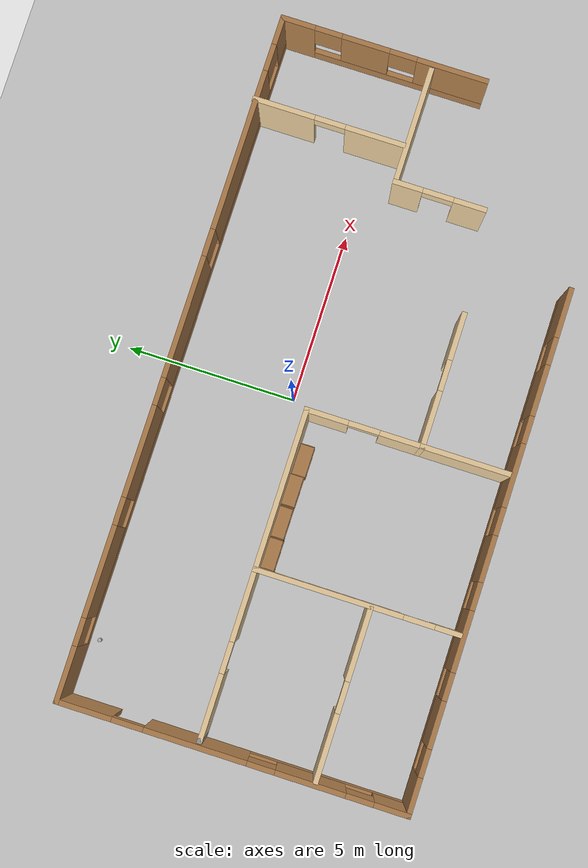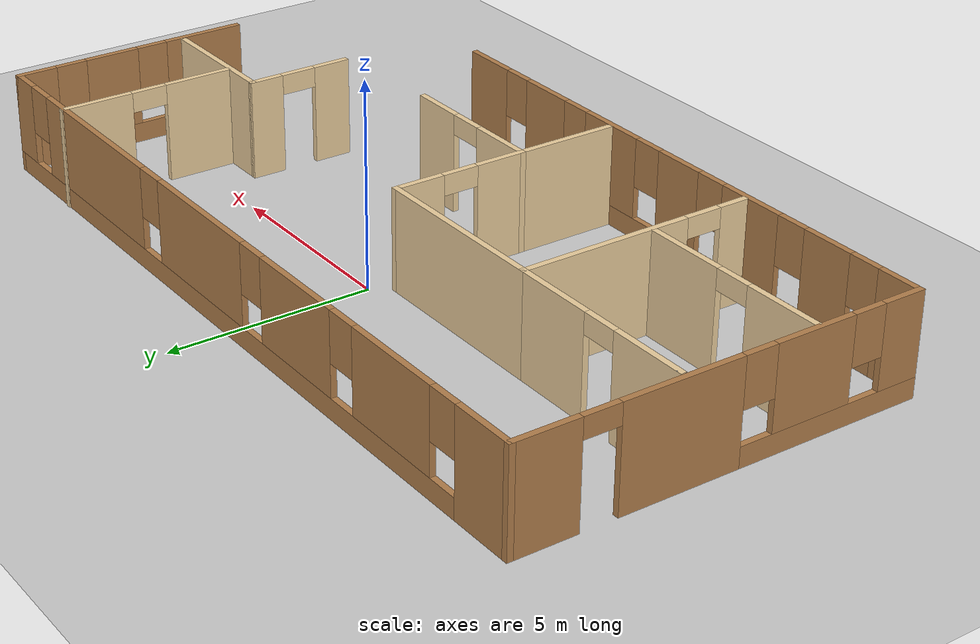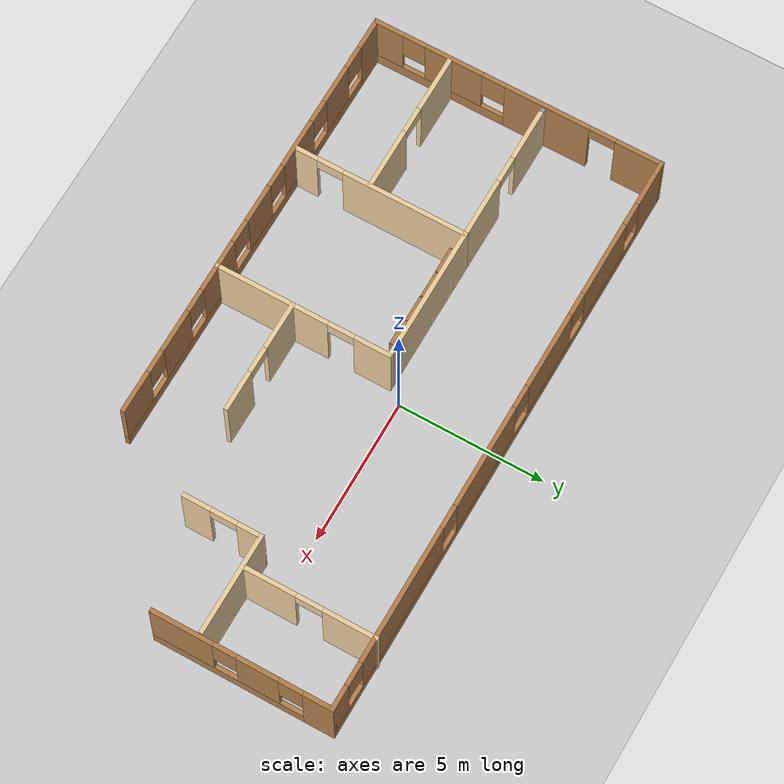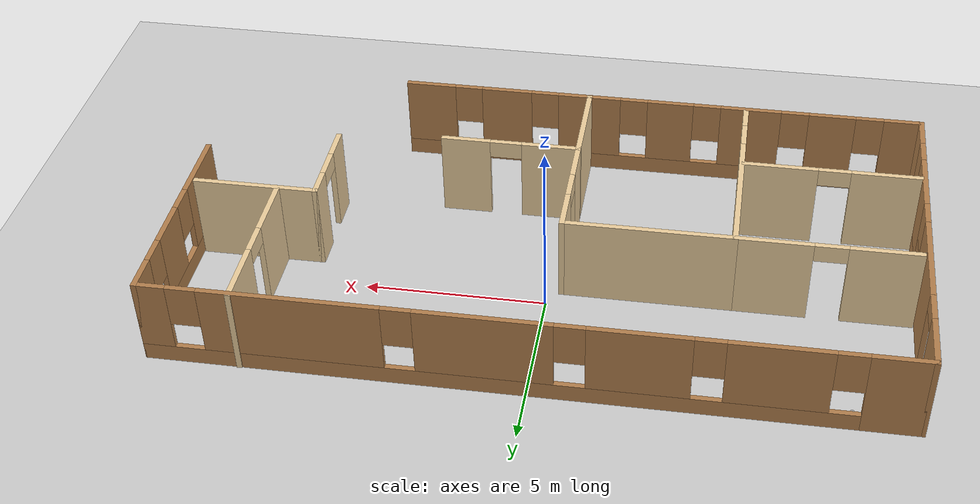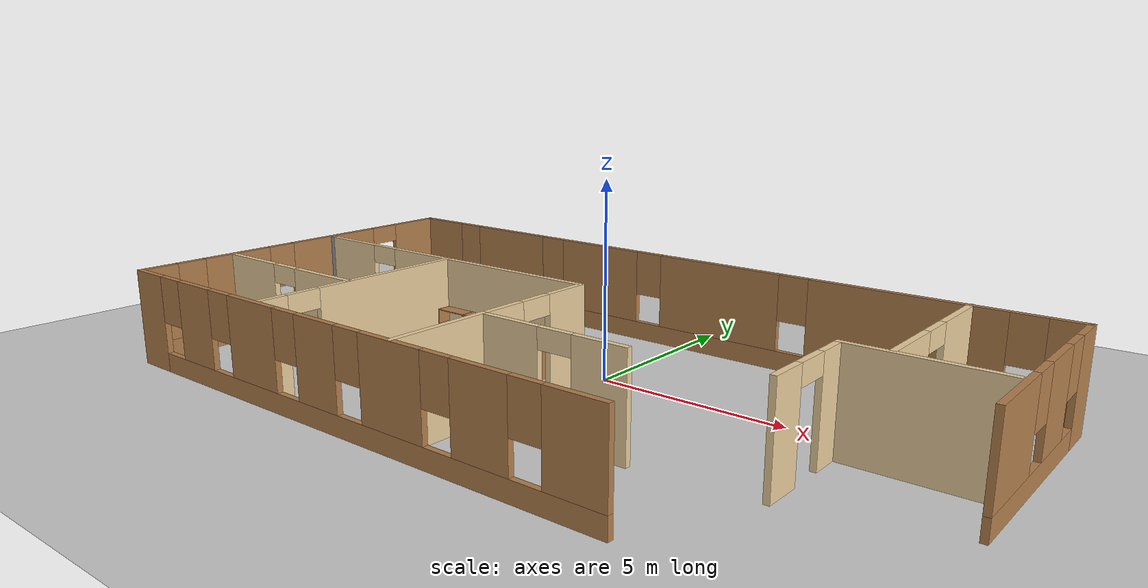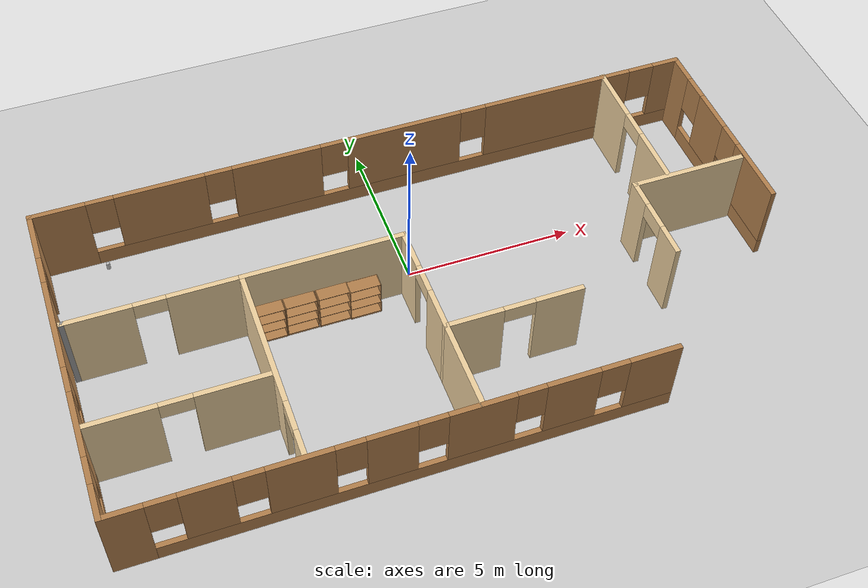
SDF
<sdf version="1.7">
 <world name="default">
  <model name="ground_plane">
   <static>1</static>
   <link name="link">
    <collision name="collision">
     <geometry><plane><normal>0 0 1</normal><size>100 100</size></plane></geometry>
     <surface>
      <contact><collide_bitmask>65535</collide_bitmask></contact>
      <friction><ode><mu>100</mu><mu2>50</mu2></ode></friction>
     </surface>
    </collision>
    <visual name="visual">
     <cast_shadows>0</cast_shadows>
     <geometry><plane><normal>0 0 1</normal><size>100 100</size></plane></geometry>
     <material>
      <script><uri>file://media/materials/scripts/gazebo.material</uri><name>Gazebo/Grey</name></script>
     </material>
    </visual>
   </link>
  </model>
  <model name="Disasterbuilding">
   <pose>0 -1.48613 0 0 -0 0</pose>
   <link name="Wall_19">
    <pose>0 4.98613 0 0 -0 0</pose>
    <visual name="Wall_19_Visual_0">
     <pose>-9.25565 0 1.25 0 -0 0</pose>
     <geometry><box><size>1.63871 0.15 2.5</size></box></geometry>
     <material>
      <script><uri>file://media/materials/scripts/gazebo.material</uri><name>Gazebo/Wood</name></script>
      <ambient>1 1 1 1</ambient>
     </material>
     <meta><layer>0</layer></meta>
    </visual>
    <collision name="Wall_19_Collision_0">
     <geometry><box><size>1.63871 0.15 2.5</size></box></geometry>
     <pose>-9.25565 0 1.25 0 -0 0</pose>
    </collision>
    <visual name="Wall_19_Visual_1">
     <pose>0.819354 0 0.25 0 -0 0</pose>
     <geometry><box><size>18.5113 0.15 0.5</size></box></geometry>
     <material>
      <script><uri>file://media/materials/scripts/gazebo.material</uri><name>Gazebo/Wood</name></script>
      <ambient>1 1 1 1</ambient>
     </material>
     <meta><layer>0</layer></meta>
    </visual>
    <collision name="Wall_19_Collision_1">
     <geometry><box><size>18.5113 0.15 0.5</size></box></geometry>
     <pose>0.819354 0 0.25 0 -0 0</pose>
    </collision>
    <visual name="Wall_19_Visual_2">
     <pose>-6.31404 0 1.5 0 -0 0</pose>
     <geometry><box><size>2.6445 0.15 2</size></box></geometry>
     <material>
      <script><uri>file://media/materials/scripts/gazebo.material</uri><name>Gazebo/Wood</name></script>
      <ambient>1 1 1 1</ambient>
     </material>
     <meta><layer>0</layer></meta>
    </visual>
    <collision name="Wall_19_Collision_2">
     <geometry><box><size>2.6445 0.15 2</size></box></geometry>
     <pose>-6.31404 0 1.5 0 -0 0</pose>
    </collision>
    <visual name="Wall_19_Visual_3">
     <pose>-2.85923 0 1.5 0 -0 0</pose>
     <geometry><box><size>2.66513 0.15 2</size></box></geometry>
     <material>
      <script><uri>file://media/materials/scripts/gazebo.material</uri><name>Gazebo/Wood</name></script>
      <ambient>1 1 1 1</ambient>
     </material>
     <meta><layer>0</layer></meta>
    </visual>
    <collision name="Wall_19_Collision_3">
     <geometry><box><size>2.66513 0.15 2</size></box></geometry>
     <pose>-2.85923 0 1.5 0 -0 0</pose>
    </collision>
    <visual name="Wall_19_Visual_4">
     <pose>1.05967 0 1.5 0 -0 0</pose>
     <geometry><box><size>3.57266 0.15 2</size></box></geometry>
     <material>
      <script><uri>file://media/materials/scripts/gazebo.material</uri><name>Gazebo/Wood</name></script>
      <ambient>1 1 1 1</ambient>
     </material>
     <meta><layer>0</layer></meta>
    </visual>
    <collision name="Wall_19_Collision_4">
     <geometry><box><size>3.57266 0.15 2</size></box></geometry>
     <pose>1.05967 0 1.5 0 -0 0</pose>
    </collision>
    <visual name="Wall_19_Visual_5">
     <pose>6.02016 0 1.5 0 -0 0</pose>
     <geometry><box><size>4.74833 0.15 2</size></box></geometry>
     <material>
      <script><uri>file://media/materials/scripts/gazebo.material</uri><name>Gazebo/Wood</name></script>
      <ambient>1 1 1 1</ambient>
     </material>
     <meta><layer>0</layer></meta>
    </visual>
    <collision name="Wall_19_Collision_5">
     <geometry><box><size>4.74833 0.15 2</size></box></geometry>
     <pose>6.02016 0 1.5 0 -0 0</pose>
    </collision>
    <visual name="Wall_19_Visual_6">
     <pose>9.63466 0 1.5 0 -0 0</pose>
     <geometry><box><size>0.880675 0.15 2</size></box></geometry>
     <material>
      <script><uri>file://media/materials/scripts/gazebo.material</uri><name>Gazebo/Wood</name></script>
      <ambient>1 1 1 1</ambient>
     </material>
     <meta><layer>0</layer></meta>
    </visual>
    <collision name="Wall_19_Collision_6">
     <geometry><box><size>0.880675 0.15 2</size></box></geometry>
     <pose>9.63466 0 1.5 0 -0 0</pose>
    </collision>
    <visual name="Wall_19_Visual_7">
     <pose>-8.03629 0 1.9 0 -0 0</pose>
     <geometry><box><size>0.8 0.15 1.2</size></box></geometry>
     <material>
      <script><uri>file://media/materials/scripts/gazebo.material</uri><name>Gazebo/Wood</name></script>
      <ambient>1 1 1 1</ambient>
     </material>
     <meta><layer>0</layer></meta>
    </visual>
    <collision name="Wall_19_Collision_7">
     <geometry><box><size>0.8 0.15 1.2</size></box></geometry>
     <pose>-8.03629 0 1.9 0 -0 0</pose>
    </collision>
    <visual name="Wall_19_Visual_8">
     <pose>-4.59179 0 1.9 0 -0 0</pose>
     <geometry><box><size>0.8 0.15 1.2</size></box></geometry>
     <material>
      <script><uri>file://media/materials/scripts/gazebo.material</uri><name>Gazebo/Wood</name></script>
      <ambient>1 1 1 1</ambient>
     </material>
     <meta><layer>0</layer></meta>
    </visual>
    <collision name="Wall_19_Collision_8">
     <geometry><box><size>0.8 0.15 1.2</size></box></geometry>
     <pose>-4.59179 0 1.9 0 -0 0</pose>
    </collision>
    <visual name="Wall_19_Visual_9">
     <pose>-1.12666 0 1.9 0 -0 0</pose>
     <geometry><box><size>0.8 0.15 1.2</size></box></geometry>
     <material>
      <script><uri>file://media/materials/scripts/gazebo.material</uri><name>Gazebo/Wood</name></script>
      <ambient>1 1 1 1</ambient>
     </material>
     <meta><layer>0</layer></meta>
    </visual>
    <collision name="Wall_19_Collision_9">
     <geometry><box><size>0.8 0.15 1.2</size></box></geometry>
     <pose>-1.12666 0 1.9 0 -0 0</pose>
    </collision>
    <visual name="Wall_19_Visual_10">
     <pose>3.246 0 1.9 0 -0 0</pose>
     <geometry><box><size>0.8 0.15 1.2</size></box></geometry>
     <material>
      <script><uri>file://media/materials/scripts/gazebo.material</uri><name>Gazebo/Wood</name></script>
      <ambient>1 1 1 1</ambient>
     </material>
     <meta><layer>0</layer></meta>
    </visual>
    <collision name="Wall_19_Collision_10">
     <geometry><box><size>0.8 0.15 1.2</size></box></geometry>
     <pose>3.246 0 1.9 0 -0 0</pose>
    </collision>
    <visual name="Wall_19_Visual_11">
     <pose>8.79433 0 1.9 0 -0 0</pose>
     <geometry><box><size>0.8 0.15 1.2</size></box></geometry>
     <material>
      <script><uri>file://media/materials/scripts/gazebo.material</uri><name>Gazebo/Wood</name></script>
      <ambient>1 1 1 1</ambient>
     </material>
     <meta><layer>0</layer></meta>
    </visual>
    <collision name="Wall_19_Collision_11">
     <geometry><box><size>0.8 0.15 1.2</size></box></geometry>
     <pose>8.79433 0 1.9 0 -0 0</pose>
    </collision>
   </link>
   <link name="Wall_22">
    <pose>10 1.98613 0 0 -0 -1.5708</pose>
    <visual name="Wall_22_Visual_0">
     <pose>-2.55828 0 1.25 0 -0 0</pose>
     <geometry><box><size>1.03344 0.15 2.5</size></box></geometry>
     <material>
      <script><uri>file://media/materials/scripts/gazebo.material</uri><name>Gazebo/Wood</name></script>
      <ambient>1 1 1 1</ambient>
     </material>
     <meta><layer>0</layer></meta>
    </visual>
    <collision name="Wall_22_Collision_0">
     <geometry><box><size>1.03344 0.15 2.5</size></box></geometry>
     <pose>-2.55828 0 1.25 0 -0 0</pose>
    </collision>
    <visual name="Wall_22_Visual_1">
     <pose>0.51672 0 0.25 0 -0 0</pose>
     <geometry><box><size>5.11656 0.15 0.5</size></box></geometry>
     <material>
      <script><uri>file://media/materials/scripts/gazebo.material</uri><name>Gazebo/Wood</name></script>
      <ambient>1 1 1 1</ambient>
     </material>
     <meta><layer>0</layer></meta>
    </visual>
    <collision name="Wall_22_Collision_1">
     <geometry><box><size>5.11656 0.15 0.5</size></box></geometry>
     <pose>0.51672 0 0.25 0 -0 0</pose>
    </collision>
    <visual name="Wall_22_Visual_2">
     <pose>-0.538081 0 1.5 0 -0 0</pose>
     <geometry><box><size>1.40696 0.15 2</size></box></geometry>
     <material>
      <script><uri>file://media/materials/scripts/gazebo.material</uri><name>Gazebo/Wood</name></script>
      <ambient>1 1 1 1</ambient>
     </material>
     <meta><layer>0</layer></meta>
    </visual>
    <collision name="Wall_22_Collision_2">
     <geometry><box><size>1.40696 0.15 2</size></box></geometry>
     <pose>-0.538081 0 1.5 0 -0 0</pose>
    </collision>
    <visual name="Wall_22_Visual_3">
     <pose>2.0202 0 1.5 0 -0 0</pose>
     <geometry><box><size>2.1096 0.15 2</size></box></geometry>
     <material>
      <script><uri>file://media/materials/scripts/gazebo.material</uri><name>Gazebo/Wood</name></script>
      <ambient>1 1 1 1</ambient>
     </material>
     <meta><layer>0</layer></meta>
    </visual>
    <collision name="Wall_22_Collision_3">
     <geometry><box><size>2.1096 0.15 2</size></box></geometry>
     <pose>2.0202 0 1.5 0 -0 0</pose>
    </collision>
    <visual name="Wall_22_Visual_4">
     <pose>-1.64156 0 1.9 0 -0 0</pose>
     <geometry><box><size>0.8 0.15 1.2</size></box></geometry>
     <material>
      <script><uri>file://media/materials/scripts/gazebo.material</uri><name>Gazebo/Wood</name></script>
      <ambient>1 1 1 1</ambient>
     </material>
     <meta><layer>0</layer></meta>
    </visual>
    <collision name="Wall_22_Collision_4">
     <geometry><box><size>0.8 0.15 1.2</size></box></geometry>
     <pose>-1.64156 0 1.9 0 -0 0</pose>
    </collision>
    <visual name="Wall_22_Visual_5">
     <pose>0.565397 0 1.9 0 -0 0</pose>
     <geometry><box><size>0.8 0.15 1.2</size></box></geometry>
     <material>
      <script><uri>file://media/materials/scripts/gazebo.material</uri><name>Gazebo/Wood</name></script>
      <ambient>1 1 1 1</ambient>
     </material>
     <meta><layer>0</layer></meta>
    </visual>
    <collision name="Wall_22_Collision_5">
     <geometry><box><size>0.8 0.15 1.2</size></box></geometry>
     <pose>0.565397 0 1.9 0 -0 0</pose>
    </collision>
   </link>
   <link name="Wall_24">
    <pose>-10 -0.013868 0 0 -0 -1.5708</pose>
    <visual name="Wall_24_Visual_0">
     <pose>-4.25327 0 1.25 0 -0 0</pose>
     <geometry><box><size>1.64346 0.15 2.5</size></box></geometry>
     <material>
      <script><uri>file://media/materials/scripts/gazebo.material</uri><name>Gazebo/Wood</name></script>
      <ambient>1 1 1 1</ambient>
     </material>
     <meta><layer>0</layer></meta>
    </visual>
    <collision name="Wall_24_Collision_0">
     <geometry><box><size>1.64346 0.15 2.5</size></box></geometry>
     <pose>-4.25327 0 1.25 0 -0 0</pose>
    </collision>
    <visual name="Wall_24_Visual_1">
     <pose>-1.05896 0 1.25 0 -0 0</pose>
     <geometry><box><size>2.94514 0.15 2.5</size></box></geometry>
     <material>
      <script><uri>file://media/materials/scripts/gazebo.material</uri><name>Gazebo/Wood</name></script>
      <ambient>1 1 1 1</ambient>
     </material>
     <meta><layer>0</layer></meta>
    </visual>
    <collision name="Wall_24_Collision_1">
     <geometry><box><size>2.94514 0.15 2.5</size></box></geometry>
     <pose>-1.05896 0 1.25 0 -0 0</pose>
    </collision>
    <visual name="Wall_24_Visual_2">
     <pose>2.7443 0 0.25 0 -0 0</pose>
     <geometry><box><size>4.6614 0.15 0.5</size></box></geometry>
     <material>
      <script><uri>file://media/materials/scripts/gazebo.material</uri><name>Gazebo/Wood</name></script>
      <ambient>1 1 1 1</ambient>
     </material>
     <meta><layer>0</layer></meta>
    </visual>
    <collision name="Wall_24_Collision_2">
     <geometry><box><size>4.6614 0.15 0.5</size></box></geometry>
     <pose>2.7443 0 0.25 0 -0 0</pose>
    </collision>
    <visual name="Wall_24_Visual_3">
     <pose>2.21616 0 1.5 0 -0 0</pose>
     <geometry><box><size>2.0051 0.15 2</size></box></geometry>
     <material>
      <script><uri>file://media/materials/scripts/gazebo.material</uri><name>Gazebo/Wood</name></script>
      <ambient>1 1 1 1</ambient>
     </material>
     <meta><layer>0</layer></meta>
    </visual>
    <collision name="Wall_24_Collision_3">
     <geometry><box><size>2.0051 0.15 2</size></box></geometry>
     <pose>2.21616 0 1.5 0 -0 0</pose>
    </collision>
    <visual name="Wall_24_Visual_4">
     <pose>4.54685 0 1.5 0 -0 0</pose>
     <geometry><box><size>1.05629 0.15 2</size></box></geometry>
     <material>
      <script><uri>file://media/materials/scripts/gazebo.material</uri><name>Gazebo/Wood</name></script>
      <ambient>1 1 1 1</ambient>
     </material>
     <meta><layer>0</layer></meta>
    </visual>
    <collision name="Wall_24_Collision_4">
     <geometry><box><size>1.05629 0.15 2</size></box></geometry>
     <pose>4.54685 0 1.5 0 -0 0</pose>
    </collision>
    <visual name="Wall_24_Visual_5">
     <pose>0.813604 0 1.9 0 -0 0</pose>
     <geometry><box><size>0.8 0.15 1.2</size></box></geometry>
     <material>
      <script><uri>file://media/materials/scripts/gazebo.material</uri><name>Gazebo/Wood</name></script>
      <ambient>1 1 1 1</ambient>
     </material>
     <meta><layer>0</layer></meta>
    </visual>
    <collision name="Wall_24_Collision_5">
     <geometry><box><size>0.8 0.15 1.2</size></box></geometry>
     <pose>0.813604 0 1.9 0 -0 0</pose>
    </collision>
    <visual name="Wall_24_Visual_6">
     <pose>3.61871 0 1.9 0 -0 0</pose>
     <geometry><box><size>0.8 0.15 1.2</size></box></geometry>
     <material>
      <script><uri>file://media/materials/scripts/gazebo.material</uri><name>Gazebo/Wood</name></script>
      <ambient>1 1 1 1</ambient>
     </material>
     <meta><layer>0</layer></meta>
    </visual>
    <collision name="Wall_24_Collision_6">
     <geometry><box><size>0.8 0.15 1.2</size></box></geometry>
     <pose>3.61871 0 1.9 0 -0 0</pose>
    </collision>
    <visual name="Wall_24_Visual_7">
     <pose>-2.98154 0 2.25 0 -0 0</pose>
     <geometry><box><size>0.9 0.15 0.5</size></box></geometry>
     <material>
      <script><uri>file://media/materials/scripts/gazebo.material</uri><name>Gazebo/Wood</name></script>
      <ambient>1 1 1 1</ambient>
     </material>
     <meta><layer>0</layer></meta>
    </visual>
    <collision name="Wall_24_Collision_7">
     <geometry><box><size>0.9 0.15 0.5</size></box></geometry>
     <pose>-2.98154 0 2.25 0 -0 0</pose>
    </collision>
   </link>
   <link name="Wall_26">
    <pose>-2.4815 -5.01387 0 0 -0 0</pose>
    <visual name="Wall_26_Visual_0">
     <pose>-7.02165 0 1.25 0 -0 0</pose>
     <geometry><box><size>1.14369 0.15 2.5</size></box></geometry>
     <material>
      <script><uri>file://media/materials/scripts/gazebo.material</uri><name>Gazebo/Wood</name></script>
      <ambient>1 1 1 1</ambient>
     </material>
     <meta><layer>0</layer></meta>
    </visual>
    <collision name="Wall_26_Collision_0">
     <geometry><box><size>1.14369 0.15 2.5</size></box></geometry>
     <pose>-7.02165 0 1.25 0 -0 0</pose>
    </collision>
    <visual name="Wall_26_Visual_1">
     <pose>0.571845 0 0.25 0 -0 0</pose>
     <geometry><box><size>14.0433 0.15 0.5</size></box></geometry>
     <material>
      <script><uri>file://media/materials/scripts/gazebo.material</uri><name>Gazebo/Wood</name></script>
      <ambient>1 1 1 1</ambient>
     </material>
     <meta><layer>0</layer></meta>
    </visual>
    <collision name="Wall_26_Collision_1">
     <geometry><box><size>14.0433 0.15 0.5</size></box></geometry>
     <pose>0.571845 0 0.25 0 -0 0</pose>
    </collision>
    <visual name="Wall_26_Visual_2">
     <pose>-4.97727 0 1.5 0 -0 0</pose>
     <geometry><box><size>1.34508 0.15 2</size></box></geometry>
     <material>
      <script><uri>file://media/materials/scripts/gazebo.material</uri><name>Gazebo/Wood</name></script>
      <ambient>1 1 1 1</ambient>
     </material>
     <meta><layer>0</layer></meta>
    </visual>
    <collision name="Wall_26_Collision_2">
     <geometry><box><size>1.34508 0.15 2</size></box></geometry>
     <pose>-4.97727 0 1.5 0 -0 0</pose>
    </collision>
    <visual name="Wall_26_Visual_3">
     <pose>-2.62594 0 1.5 0 -0 0</pose>
     <geometry><box><size>1.75759 0.15 2</size></box></geometry>
     <material>
      <script><uri>file://media/materials/scripts/gazebo.material</uri><name>Gazebo/Wood</name></script>
      <ambient>1 1 1 1</ambient>
     </material>
     <meta><layer>0</layer></meta>
    </visual>
    <collision name="Wall_26_Collision_3">
     <geometry><box><size>1.75759 0.15 2</size></box></geometry>
     <pose>-2.62594 0 1.5 0 -0 0</pose>
    </collision>
    <visual name="Wall_26_Visual_4">
     <pose>-0.274599 0 1.5 0 -0 0</pose>
     <geometry><box><size>1.34508 0.15 2</size></box></geometry>
     <material>
      <script><uri>file://media/materials/scripts/gazebo.material</uri><name>Gazebo/Wood</name></script>
      <ambient>1 1 1 1</ambient>
     </material>
     <meta><layer>0</layer></meta>
    </visual>
    <collision name="Wall_26_Collision_4">
     <geometry><box><size>1.34508 0.15 2</size></box></geometry>
     <pose>-0.274599 0 1.5 0 -0 0</pose>
    </collision>
    <visual name="Wall_26_Visual_5">
     <pose>2.11799 0 1.5 0 -0 0</pose>
     <geometry><box><size>1.8401 0.15 2</size></box></geometry>
     <material>
      <script><uri>file://media/materials/scripts/gazebo.material</uri><name>Gazebo/Wood</name></script>
      <ambient>1 1 1 1</ambient>
     </material>
     <meta><layer>0</layer></meta>
    </visual>
    <collision name="Wall_26_Collision_5">
     <geometry><box><size>1.8401 0.15 2</size></box></geometry>
     <pose>2.11799 0 1.5 0 -0 0</pose>
    </collision>
    <visual name="Wall_26_Visual_6">
     <pose>4.58277 0 1.5 0 -0 0</pose>
     <geometry><box><size>1.48946 0.15 2</size></box></geometry>
     <material>
      <script><uri>file://media/materials/scripts/gazebo.material</uri><name>Gazebo/Wood</name></script>
      <ambient>1 1 1 1</ambient>
     </material>
     <meta><layer>0</layer></meta>
    </visual>
    <collision name="Wall_26_Collision_6">
     <geometry><box><size>1.48946 0.15 2</size></box></geometry>
     <pose>4.58277 0 1.5 0 -0 0</pose>
    </collision>
    <visual name="Wall_26_Visual_7">
     <pose>6.8605 0 1.5 0 -0 0</pose>
     <geometry><box><size>1.466 0.15 2</size></box></geometry>
     <material>
      <script><uri>file://media/materials/scripts/gazebo.material</uri><name>Gazebo/Wood</name></script>
      <ambient>1 1 1 1</ambient>
     </material>
     <meta><layer>0</layer></meta>
    </visual>
    <collision name="Wall_26_Collision_7">
     <geometry><box><size>1.466 0.15 2</size></box></geometry>
     <pose>6.8605 0 1.5 0 -0 0</pose>
    </collision>
    <visual name="Wall_26_Visual_8">
     <pose>-6.04981 0 1.9 0 -0 0</pose>
     <geometry><box><size>0.8 0.15 1.2</size></box></geometry>
     <material>
      <script><uri>file://media/materials/scripts/gazebo.material</uri><name>Gazebo/Wood</name></script>
      <ambient>1 1 1 1</ambient>
     </material>
     <meta><layer>0</layer></meta>
    </visual>
    <collision name="Wall_26_Collision_8">
     <geometry><box><size>0.8 0.15 1.2</size></box></geometry>
     <pose>-6.04981 0 1.9 0 -0 0</pose>
    </collision>
    <visual name="Wall_26_Visual_9">
     <pose>-3.90473 0 1.9 0 -0 0</pose>
     <geometry><box><size>0.8 0.15 1.2</size></box></geometry>
     <material>
      <script><uri>file://media/materials/scripts/gazebo.material</uri><name>Gazebo/Wood</name></script>
      <ambient>1 1 1 1</ambient>
     </material>
     <meta><layer>0</layer></meta>
    </visual>
    <collision name="Wall_26_Collision_9">
     <geometry><box><size>0.8 0.15 1.2</size></box></geometry>
     <pose>-3.90473 0 1.9 0 -0 0</pose>
    </collision>
    <visual name="Wall_26_Visual_10">
     <pose>-1.34714 0 1.9 0 -0 0</pose>
     <geometry><box><size>0.8 0.15 1.2</size></box></geometry>
     <material>
      <script><uri>file://media/materials/scripts/gazebo.material</uri><name>Gazebo/Wood</name></script>
      <ambient>1 1 1 1</ambient>
     </material>
     <meta><layer>0</layer></meta>
    </visual>
    <collision name="Wall_26_Collision_10">
     <geometry><box><size>0.8 0.15 1.2</size></box></geometry>
     <pose>-1.34714 0 1.9 0 -0 0</pose>
    </collision>
    <visual name="Wall_26_Visual_11">
     <pose>0.797941 0 1.9 0 -0 0</pose>
     <geometry><box><size>0.8 0.15 1.2</size></box></geometry>
     <material>
      <script><uri>file://media/materials/scripts/gazebo.material</uri><name>Gazebo/Wood</name></script>
      <ambient>1 1 1 1</ambient>
     </material>
     <meta><layer>0</layer></meta>
    </visual>
    <collision name="Wall_26_Collision_11">
     <geometry><box><size>0.8 0.15 1.2</size></box></geometry>
     <pose>0.797941 0 1.9 0 -0 0</pose>
    </collision>
    <visual name="Wall_26_Visual_12">
     <pose>3.43804 0 1.9 0 -0 0</pose>
     <geometry><box><size>0.8 0.15 1.2</size></box></geometry>
     <material>
      <script><uri>file://media/materials/scripts/gazebo.material</uri><name>Gazebo/Wood</name></script>
      <ambient>1 1 1 1</ambient>
     </material>
     <meta><layer>0</layer></meta>
    </visual>
    <collision name="Wall_26_Collision_12">
     <geometry><box><size>0.8 0.15 1.2</size></box></geometry>
     <pose>3.43804 0 1.9 0 -0 0</pose>
    </collision>
    <visual name="Wall_26_Visual_13">
     <pose>5.7275 0 1.9 0 -0 0</pose>
     <geometry><box><size>0.8 0.15 1.2</size></box></geometry>
     <material>
      <script><uri>file://media/materials/scripts/gazebo.material</uri><name>Gazebo/Wood</name></script>
      <ambient>1 1 1 1</ambient>
     </material>
     <meta><layer>0</layer></meta>
    </visual>
    <collision name="Wall_26_Collision_13">
     <geometry><box><size>0.8 0.15 1.2</size></box></geometry>
     <pose>5.7275 0 1.9 0 -0 0</pose>
    </collision>
   </link>
   <link name="Wall_28">
    <pose>6.47464 -0.749842 0 0 -0 1.5708</pose>
    <visual name="Wall_28_Visual_0">
     <pose>-0.889438 0 1.25 0 -0 0</pose>
     <geometry><box><size>0.971124 0.15 2.5</size></box></geometry>
     <material>
      <script><uri>file://media/materials/scripts/gazebo.material</uri><name>Gazebo/Grey</name></script>
      <ambient>0.921569 0.807843 0.615686 1</ambient>
     </material>
     <meta><layer>0</layer></meta>
    </visual>
    <collision name="Wall_28_Collision_0">
     <geometry><box><size>0.971124 0.15 2.5</size></box></geometry>
     <pose>-0.889438 0 1.25 0 -0 0</pose>
    </collision>
    <visual name="Wall_28_Visual_1">
     <pose>0.935562 0 1.25 0 -0 0</pose>
     <geometry><box><size>0.878876 0.15 2.5</size></box></geometry>
     <material>
      <script><uri>file://media/materials/scripts/gazebo.material</uri><name>Gazebo/Grey</name></script>
      <ambient>0.921569 0.807843 0.615686 1</ambient>
     </material>
     <meta><layer>0</layer></meta>
    </visual>
    <collision name="Wall_28_Collision_1">
     <geometry><box><size>0.878876 0.15 2.5</size></box></geometry>
     <pose>0.935562 0 1.25 0 -0 0</pose>
    </collision>
    <visual name="Wall_28_Visual_2">
     <pose>0.046124 0 2.25 0 -0 0</pose>
     <geometry><box><size>0.9 0.15 0.5</size></box></geometry>
     <material>
      <script><uri>file://media/materials/scripts/gazebo.material</uri><name>Gazebo/Grey</name></script>
      <ambient>0.921569 0.807843 0.615686 1</ambient>
     </material>
     <meta><layer>0</layer></meta>
    </visual>
    <collision name="Wall_28_Collision_2">
     <geometry><box><size>0.9 0.15 0.5</size></box></geometry>
     <pose>0.046124 0 2.25 0 -0 0</pose>
    </collision>
   </link>
   <link name="Wall_29">
    <collision name="Wall_29_Collision">
     <geometry><box><size>3.5 0.15 2.5</size></box></geometry>
     <pose>0 0 1.25 0 -0 0</pose>
    </collision>
    <visual name="Wall_29_Visual">
     <pose>0 0 1.25 0 -0 0</pose>
     <geometry><box><size>3.5 0.15 2.5</size></box></geometry>
     <material>
      <script><uri>file://media/materials/scripts/gazebo.material</uri><name>Gazebo/Grey</name></script>
      <ambient>0.921569 0.807843 0.615686 1</ambient>
     </material>
     <meta><layer>0</layer></meta>
    </visual>
    <pose>8.14964 0.550158 0 0 -0 0</pose>
   </link>
   <link name="Wall_31">
    <pose>7.53517 2.83887 0 0 -0 1.5708</pose>
    <visual name="Wall_31_Visual_0">
     <pose>-1.3681 0 1.25 0 -0 0</pose>
     <geometry><box><size>1.76379 0.15 2.5</size></box></geometry>
     <material>
      <script><uri>file://media/materials/scripts/gazebo.material</uri><name>Gazebo/Grey</name></script>
      <ambient>0.921569 0.807843 0.615686 1</ambient>
     </material>
     <meta><layer>0</layer></meta>
    </visual>
    <collision name="Wall_31_Collision_0">
     <geometry><box><size>1.76379 0.15 2.5</size></box></geometry>
     <pose>-1.3681 0 1.25 0 -0 0</pose>
    </collision>
    <visual name="Wall_31_Visual_1">
     <pose>1.3319 0 1.25 0 -0 0</pose>
     <geometry><box><size>1.83621 0.15 2.5</size></box></geometry>
     <material>
      <script><uri>file://media/materials/scripts/gazebo.material</uri><name>Gazebo/Grey</name></script>
      <ambient>0.921569 0.807843 0.615686 1</ambient>
     </material>
     <meta><layer>0</layer></meta>
    </visual>
    <collision name="Wall_31_Collision_1">
     <geometry><box><size>1.83621 0.15 2.5</size></box></geometry>
     <pose>1.3319 0 1.25 0 -0 0</pose>
    </collision>
    <visual name="Wall_31_Visual_2">
     <pose>-0.036208 0 2.25 0 -0 0</pose>
     <geometry><box><size>0.9 0.15 0.5</size></box></geometry>
     <material>
      <script><uri>file://media/materials/scripts/gazebo.material</uri><name>Gazebo/Grey</name></script>
      <ambient>0.921569 0.807843 0.615686 1</ambient>
     </material>
     <meta><layer>0</layer></meta>
    </visual>
    <collision name="Wall_31_Collision_2">
     <geometry><box><size>0.9 0.15 0.5</size></box></geometry>
     <pose>-0.036208 0 2.25 0 -0 0</pose>
    </collision>
   </link>
   <link name="Wall_33">
    <pose>1.5552 -2.39296 0 0 -0 3.14159</pose>
    <visual name="Wall_33_Visual_0">
     <pose>-1.29693 0 1.25 0 -0 0</pose>
     <geometry><box><size>1.40614 0.15 2.5</size></box></geometry>
     <material>
      <script><uri>file://media/materials/scripts/gazebo.material</uri><name>Gazebo/Grey</name></script>
      <ambient>0.921569 0.807843 0.615686 1</ambient>
     </material>
     <meta><layer>0</layer></meta>
    </visual>
    <collision name="Wall_33_Collision_0">
     <geometry><box><size>1.40614 0.15 2.5</size></box></geometry>
     <pose>-1.29693 0 1.25 0 -0 0</pose>
    </collision>
    <visual name="Wall_33_Visual_1">
     <pose>1.15307 0 1.25 0 -0 0</pose>
     <geometry><box><size>1.69386 0.15 2.5</size></box></geometry>
     <material>
      <script><uri>file://media/materials/scripts/gazebo.material</uri><name>Gazebo/Grey</name></script>
      <ambient>0.921569 0.807843 0.615686 1</ambient>
     </material>
     <meta><layer>0</layer></meta>
    </visual>
    <collision name="Wall_33_Collision_1">
     <geometry><box><size>1.69386 0.15 2.5</size></box></geometry>
     <pose>1.15307 0 1.25 0 -0 0</pose>
    </collision>
    <visual name="Wall_33_Visual_2">
     <pose>-0.14386 0 2.25 0 -0 0</pose>
     <geometry><box><size>0.9 0.15 0.5</size></box></geometry>
     <material>
      <script><uri>file://media/materials/scripts/gazebo.material</uri><name>Gazebo/Grey</name></script>
      <ambient>0.921569 0.807843 0.615686 1</ambient>
     </material>
     <meta><layer>0</layer></meta>
    </visual>
    <collision name="Wall_33_Collision_2">
     <geometry><box><size>0.9 0.15 0.5</size></box></geometry>
     <pose>-0.14386 0 2.25 0 -0 0</pose>
    </collision>
   </link>
   <link name="Wall_34">
    <collision name="Wall_34_Collision">
     <geometry><box><size>2.75 0.15 2.5</size></box></geometry>
     <pose>0 0 1.25 0 -0 0</pose>
    </collision>
    <visual name="Wall_34_Visual">
     <pose>0 0 1.25 0 -0 0</pose>
     <geometry><box><size>2.75 0.15 2.5</size></box></geometry>
     <material>
      <script><uri>file://media/materials/scripts/gazebo.material</uri><name>Gazebo/Grey</name></script>
      <ambient>0.921569 0.807843 0.615686 1</ambient>
     </material>
     <meta><layer>0</layer></meta>
    </visual>
    <pose>-0.369795 -3.69295 0 0 -0 -1.5708</pose>
   </link>
   <link name="Wall_36">
    <pose>-0.369795 -0.717954 0 0 -0 1.5708</pose>
    <visual name="Wall_36_Visual_0">
     <pose>-1.09288 0 1.25 0 -0 0</pose>
     <geometry><box><size>1.31424 0.15 2.5</size></box></geometry>
     <material>
      <script><uri>file://media/materials/scripts/gazebo.material</uri><name>Gazebo/Grey</name></script>
      <ambient>0.921569 0.807843 0.615686 1</ambient>
     </material>
     <meta><layer>0</layer></meta>
    </visual>
    <collision name="Wall_36_Collision_0">
     <geometry><box><size>1.31424 0.15 2.5</size></box></geometry>
     <pose>-1.09288 0 1.25 0 -0 0</pose>
    </collision>
    <visual name="Wall_36_Visual_1">
     <pose>1.10712 0 1.25 0 -0 0</pose>
     <geometry><box><size>1.28576 0.15 2.5</size></box></geometry>
     <material>
      <script><uri>file://media/materials/scripts/gazebo.material</uri><name>Gazebo/Grey</name></script>
      <ambient>0.921569 0.807843 0.615686 1</ambient>
     </material>
     <meta><layer>0</layer></meta>
    </visual>
    <collision name="Wall_36_Collision_1">
     <geometry><box><size>1.28576 0.15 2.5</size></box></geometry>
     <pose>1.10712 0 1.25 0 -0 0</pose>
    </collision>
    <visual name="Wall_36_Visual_2">
     <pose>0.014236 0 2.25 0 -0 0</pose>
     <geometry><box><size>0.9 0.15 0.5</size></box></geometry>
     <material>
      <script><uri>file://media/materials/scripts/gazebo.material</uri><name>Gazebo/Grey</name></script>
      <ambient>0.921569 0.807843 0.615686 1</ambient>
     </material>
     <meta><layer>0</layer></meta>
    </visual>
    <collision name="Wall_36_Collision_2">
     <geometry><box><size>0.9 0.15 0.5</size></box></geometry>
     <pose>0.014236 0 2.25 0 -0 0</pose>
    </collision>
   </link>
   <link name="Wall_37">
    <collision name="Wall_37_Collision">
     <geometry><box><size>4.75 0.15 2.5</size></box></geometry>
     <pose>0 0 1.25 0 -0 0</pose>
    </collision>
    <visual name="Wall_37_Visual">
     <pose>0 0 1.25 0 -0 0</pose>
     <geometry><box><size>4.75 0.15 2.5</size></box></geometry>
     <material>
      <script><uri>file://media/materials/scripts/gazebo.material</uri><name>Gazebo/Grey</name></script>
      <ambient>0.921569 0.807843 0.615686 1</ambient>
     </material>
     <meta><layer>0</layer></meta>
    </visual>
    <pose>-2.6699 0.957089 0 0 -0 3.14157</pose>
   </link>
   <link name="Wall_38">
    <pose>-4.9699 -1.96791 0 0 -0 -1.57076</pose>
    <visual name="Wall_38_Visual_0">
     <pose>-0.841106 0 1.25 0 -0 0</pose>
     <geometry><box><size>4.31779 0.15 2.5</size></box></geometry>
     <material>
      <script><uri>file://media/materials/scripts/gazebo.material</uri><name>Gazebo/Grey</name></script>
      <ambient>0.921569 0.807843 0.615686 1</ambient>
     </material>
     <meta><layer>0</layer></meta>
    </visual>
    <collision name="Wall_38_Collision_0">
     <geometry><box><size>4.31779 0.15 2.5</size></box></geometry>
     <pose>-0.841106 0 1.25 0 -0 0</pose>
    </collision>
    <visual name="Wall_38_Visual_1">
     <pose>2.60889 0 1.25 0 -0 0</pose>
     <geometry><box><size>0.782212 0.15 2.5</size></box></geometry>
     <material>
      <script><uri>file://media/materials/scripts/gazebo.material</uri><name>Gazebo/Grey</name></script>
      <ambient>0.921569 0.807843 0.615686 1</ambient>
     </material>
     <meta><layer>0</layer></meta>
    </visual>
    <collision name="Wall_38_Collision_1">
     <geometry><box><size>0.782212 0.15 2.5</size></box></geometry>
     <pose>2.60889 0 1.25 0 -0 0</pose>
    </collision>
    <visual name="Wall_38_Visual_2">
     <pose>1.76779 0 2.25 0 -0 0</pose>
     <geometry><box><size>0.9 0.15 0.5</size></box></geometry>
     <material>
      <script><uri>file://media/materials/scripts/gazebo.material</uri><name>Gazebo/Grey</name></script>
      <ambient>0.921569 0.807843 0.615686 1</ambient>
     </material>
     <meta><layer>0</layer></meta>
    </visual>
    <collision name="Wall_38_Collision_2">
     <geometry><box><size>0.9 0.15 0.5</size></box></geometry>
     <pose>1.76779 0 2.25 0 -0 0</pose>
    </collision>
   </link>
   <link name="Wall_40">
    <pose>-7.46023 -2.36176 0 0 -0 3.14159</pose>
    <visual name="Wall_40_Visual_0">
     <pose>-1.43448 0 1.25 0 -0 0</pose>
     <geometry><box><size>2.13104 0.15 2.5</size></box></geometry>
     <material>
      <script><uri>file://media/materials/scripts/gazebo.material</uri><name>Gazebo/Grey</name></script>
      <ambient>0.921569 0.807843 0.615686 1</ambient>
     </material>
     <meta><layer>0</layer></meta>
    </visual>
    <collision name="Wall_40_Collision_0">
     <geometry><box><size>2.13104 0.15 2.5</size></box></geometry>
     <pose>-1.43448 0 1.25 0 -0 0</pose>
    </collision>
    <visual name="Wall_40_Visual_1">
     <pose>1.51552 0 1.25 0 -0 0</pose>
     <geometry><box><size>1.96896 0.15 2.5</size></box></geometry>
     <material>
      <script><uri>file://media/materials/scripts/gazebo.material</uri><name>Gazebo/Grey</name></script>
      <ambient>0.921569 0.807843 0.615686 1</ambient>
     </material>
     <meta><layer>0</layer></meta>
    </visual>
    <collision name="Wall_40_Collision_1">
     <geometry><box><size>1.96896 0.15 2.5</size></box></geometry>
     <pose>1.51552 0 1.25 0 -0 0</pose>
    </collision>
    <visual name="Wall_40_Visual_2">
     <pose>0.081044 0 2.25 0 -0 0</pose>
     <geometry><box><size>0.9 0.15 0.5</size></box></geometry>
     <material>
      <script><uri>file://media/materials/scripts/gazebo.material</uri><name>Gazebo/Grey</name></script>
      <ambient>0.921569 0.807843 0.615686 1</ambient>
     </material>
     <meta><layer>0</layer></meta>
    </visual>
    <collision name="Wall_40_Collision_2">
     <geometry><box><size>0.9 0.15 0.5</size></box></geometry>
     <pose>0.081044 0 2.25 0 -0 0</pose>
    </collision>
   </link>
   <link name="Wall_42">
    <pose>-7.398 0.957132 0 0 -0 3.14159</pose>
    <visual name="Wall_42_Visual_0">
     <pose>-1.4358 0 1.25 0 -0 0</pose>
     <geometry><box><size>2.1344 0.15 2.5</size></box></geometry>
     <material>
      <script><uri>file://media/materials/scripts/gazebo.material</uri><name>Gazebo/Grey</name></script>
      <ambient>0.921569 0.807843 0.615686 1</ambient>
     </material>
     <meta><layer>0</layer></meta>
    </visual>
    <collision name="Wall_42_Collision_0">
     <geometry><box><size>2.1344 0.15 2.5</size></box></geometry>
     <pose>-1.4358 0 1.25 0 -0 0</pose>
    </collision>
    <visual name="Wall_42_Visual_1">
     <pose>1.5172 0 1.25 0 -0 0</pose>
     <geometry><box><size>1.9716 0.15 2.5</size></box></geometry>
     <material>
      <script><uri>file://media/materials/scripts/gazebo.material</uri><name>Gazebo/Grey</name></script>
      <ambient>0.921569 0.807843 0.615686 1</ambient>
     </material>
     <meta><layer>0</layer></meta>
    </visual>
    <collision name="Wall_42_Collision_1">
     <geometry><box><size>1.9716 0.15 2.5</size></box></geometry>
     <pose>1.5172 0 1.25 0 -0 0</pose>
    </collision>
    <visual name="Wall_42_Visual_2">
     <pose>0.081397 0 2.25 0 -0 0</pose>
     <geometry><box><size>0.9 0.15 0.5</size></box></geometry>
     <material>
      <script><uri>file://media/materials/scripts/gazebo.material</uri><name>Gazebo/Grey</name></script>
      <ambient>0.921569 0.807843 0.615686 1</ambient>
     </material>
     <meta><layer>0</layer></meta>
    </visual>
    <collision name="Wall_42_Collision_2">
     <geometry><box><size>0.9 0.15 0.5</size></box></geometry>
     <pose>0.081397 0 2.25 0 -0 0</pose>
    </collision>
   </link>
   <link name="Wall_43">
    <collision name="Wall_43_Collision">
     <geometry><box><size>0.15 0.15 2.5</size></box></geometry>
     <pose>0 0 1.25 0 -0 0</pose>
    </collision>
    <visual name="Wall_43_Visual">
     <pose>0 0 1.25 0 -0 0</pose>
     <geometry><box><size>0.15 0.15 2.5</size></box></geometry>
     <material>
      <script><uri>file://media/materials/scripts/gazebo.material</uri><name>Gazebo/Grey</name></script>
      <ambient>1 1 1 1</ambient>
     </material>
     <meta><layer>0</layer></meta>
    </visual>
    <pose>-9.826 0.957132 0 0 -0 0</pose>
   </link>
   <static>1</static>
  </model>
  <model name="bookshelf">
   <static>1</static>
   <link name="link">
    <inertial><mass>1</mass></inertial>
    <collision name="back">
     <pose>0 0.005 0.6 0 -0 0</pose>
     <geometry><box><size>0.9 0.01 1.2</size></box></geometry>
    </collision>
    <visual name="visual1">
     <pose>0 0.005 0.6 0 -0 0</pose>
     <geometry><box><size>0.9 0.01 1.2</size></box></geometry>
     <material>
      <script><uri>file://media/materials/scripts/gazebo.material</uri><name>Gazebo/Wood</name></script>
     </material>
    </visual>
    <collision name="left_side">
     <pose>0.45 -0.195 0.6 0 -0 0</pose>
     <geometry><box><size>0.02 0.4 1.2</size></box></geometry>
    </collision>
    <visual name="visual2">
     <pose>0.45 -0.195 0.6 0 -0 0</pose>
     <geometry><box><size>0.02 0.4 1.2</size></box></geometry>
     <material>
      <script><uri>file://media/materials/scripts/gazebo.material</uri><name>Gazebo/Wood</name></script>
     </material>
    </visual>
    <collision name="right_side">
     <pose>-0.45 -0.195 0.6 0 -0 0</pose>
     <geometry><box><size>0.02 0.4 1.2</size></box></geometry>
    </collision>
    <visual name="visual3">
     <pose>-0.45 -0.195 0.6 0 -0 0</pose>
     <geometry><box><size>0.02 0.4 1.2</size></box></geometry>
     <material>
      <script><uri>file://media/materials/scripts/gazebo.material</uri><name>Gazebo/Wood</name></script>
     </material>
    </visual>
    <collision name="bottom">
     <pose>0 -0.195 0.03 0 -0 0</pose>
     <geometry><box><size>0.88 0.4 0.06</size></box></geometry>
    </collision>
    <visual name="visual4">
     <pose>0 -0.195 0.03 0 -0 0</pose>
     <geometry><box><size>0.88 0.4 0.06</size></box></geometry>
     <material>
      <script><uri>file://media/materials/scripts/gazebo.material</uri><name>Gazebo/Wood</name></script>
     </material>
    </visual>
    <collision name="top">
     <pose>0 -0.195 1.19 0 -0 0</pose>
     <geometry><box><size>0.88 0.4 0.02</size></box></geometry>
    </collision>
    <visual name="visual5">
     <pose>0 -0.195 1.19 0 -0 0</pose>
     <geometry><box><size>0.88 0.4 0.02</size></box></geometry>
     <material>
      <script><uri>file://media/materials/scripts/gazebo.material</uri><name>Gazebo/Wood</name></script>
     </material>
    </visual>
    <collision name="low_shelf">
     <pose>0 -0.195 0.43 0 -0 0</pose>
     <geometry><box><size>0.88 0.4 0.02</size></box></geometry>
    </collision>
    <visual name="visual6">
     <pose>0 -0.195 0.43 0 -0 0</pose>
     <geometry><box><size>0.88 0.4 0.02</size></box></geometry>
     <material>
      <script><uri>file://media/materials/scripts/gazebo.material</uri><name>Gazebo/Wood</name></script>
     </material>
    </visual>
    <collision name="high_shelf">
     <pose>0 -0.195 0.8 0 -0 0</pose>
     <geometry><box><size>0.88 0.4 0.02</size></box></geometry>
    </collision>
    <visual name="visual7">
     <pose>0 -0.195 0.8 0 -0 0</pose>
     <geometry><box><size>0.88 0.4 0.02</size></box></geometry>
     <material>
      <script><uri>file://media/materials/scripts/gazebo.material</uri><name>Gazebo/Wood</name></script>
     </material>
    </visual>
   </link>
   <pose>-4.42955 -0.597791 0 0 -0 0</pose>
  </model>
  <model name="bookshelf_0">
   <static>1</static>
   <link name="link">
    <inertial><mass>1</mass></inertial>
    <collision name="back">
     <pose>0 0.005 0.6 0 -0 0</pose>
     <geometry><box><size>0.9 0.01 1.2</size></box></geometry>
    </collision>
    <visual name="visual1">
     <pose>0 0.005 0.6 0 -0 0</pose>
     <geometry><box><size>0.9 0.01 1.2</size></box></geometry>
     <material>
      <script><uri>file://media/materials/scripts/gazebo.material</uri><name>Gazebo/Wood</name></script>
     </material>
    </visual>
    <collision name="left_side">
     <pose>0.45 -0.195 0.6 0 -0 0</pose>
     <geometry><box><size>0.02 0.4 1.2</size></box></geometry>
    </collision>
    <visual name="visual2">
     <pose>0.45 -0.195 0.6 0 -0 0</pose>
     <geometry><box><size>0.02 0.4 1.2</size></box></geometry>
     <material>
      <script><uri>file://media/materials/scripts/gazebo.material</uri><name>Gazebo/Wood</name></script>
     </material>
    </visual>
    <collision name="right_side">
     <pose>-0.45 -0.195 0.6 0 -0 0</pose>
     <geometry><box><size>0.02 0.4 1.2</size></box></geometry>
    </collision>
    <visual name="visual3">
     <pose>-0.45 -0.195 0.6 0 -0 0</pose>
     <geometry><box><size>0.02 0.4 1.2</size></box></geometry>
     <material>
      <script><uri>file://media/materials/scripts/gazebo.material</uri><name>Gazebo/Wood</name></script>
     </material>
    </visual>
    <collision name="bottom">
     <pose>0 -0.195 0.03 0 -0 0</pose>
     <geometry><box><size>0.88 0.4 0.06</size></box></geometry>
    </collision>
    <visual name="visual4">
     <pose>0 -0.195 0.03 0 -0 0</pose>
     <geometry><box><size>0.88 0.4 0.06</size></box></geometry>
     <material>
      <script><uri>file://media/materials/scripts/gazebo.material</uri><name>Gazebo/Wood</name></script>
     </material>
    </visual>
    <collision name="top">
     <pose>0 -0.195 1.19 0 -0 0</pose>
     <geometry><box><size>0.88 0.4 0.02</size></box></geometry>
    </collision>
    <visual name="visual5">
     <pose>0 -0.195 1.19 0 -0 0</pose>
     <geometry><box><size>0.88 0.4 0.02</size></box></geometry>
     <material>
      <script><uri>file://media/materials/scripts/gazebo.material</uri><name>Gazebo/Wood</name></script>
     </material>
    </visual>
    <collision name="low_shelf">
     <pose>0 -0.195 0.43 0 -0 0</pose>
     <geometry><box><size>0.88 0.4 0.02</size></box></geometry>
    </collision>
    <visual name="visual6">
     <pose>0 -0.195 0.43 0 -0 0</pose>
     <geometry><box><size>0.88 0.4 0.02</size></box></geometry>
     <material>
      <script><uri>file://media/materials/scripts/gazebo.material</uri><name>Gazebo/Wood</name></script>
     </material>
    </visual>
    <collision name="high_shelf">
     <pose>0 -0.195 0.8 0 -0 0</pose>
     <geometry><box><size>0.88 0.4 0.02</size></box></geometry>
    </collision>
    <visual name="visual7">
     <pose>0 -0.195 0.8 0 -0 0</pose>
     <geometry><box><size>0.88 0.4 0.02</size></box></geometry>
     <material>
      <script><uri>file://media/materials/scripts/gazebo.material</uri><name>Gazebo/Wood</name></script>
     </material>
    </visual>
   </link>
   <pose>-3.50218 -0.586358 0 0 -0 0</pose>
  </model>
  <model name="bookshelf_1">
   <static>1</static>
   <link name="link">
    <inertial><mass>1</mass></inertial>
    <collision name="back">
     <pose>0 0.005 0.6 0 -0 0</pose>
     <geometry><box><size>0.9 0.01 1.2</size></box></geometry>
    </collision>
    <visual name="visual1">
     <pose>0 0.005 0.6 0 -0 0</pose>
     <geometry><box><size>0.9 0.01 1.2</size></box></geometry>
     <material>
      <script><uri>file://media/materials/scripts/gazebo.material</uri><name>Gazebo/Wood</name></script>
     </material>
    </visual>
    <collision name="left_side">
     <pose>0.45 -0.195 0.6 0 -0 0</pose>
     <geometry><box><size>0.02 0.4 1.2</size></box></geometry>
    </collision>
    <visual name="visual2">
     <pose>0.45 -0.195 0.6 0 -0 0</pose>
     <geometry><box><size>0.02 0.4 1.2</size></box></geometry>
     <material>
      <script><uri>file://media/materials/scripts/gazebo.material</uri><name>Gazebo/Wood</name></script>
     </material>
    </visual>
    <collision name="right_side">
     <pose>-0.45 -0.195 0.6 0 -0 0</pose>
     <geometry><box><size>0.02 0.4 1.2</size></box></geometry>
    </collision>
    <visual name="visual3">
     <pose>-0.45 -0.195 0.6 0 -0 0</pose>
     <geometry><box><size>0.02 0.4 1.2</size></box></geometry>
     <material>
      <script><uri>file://media/materials/scripts/gazebo.material</uri><name>Gazebo/Wood</name></script>
     </material>
    </visual>
    <collision name="bottom">
     <pose>0 -0.195 0.03 0 -0 0</pose>
     <geometry><box><size>0.88 0.4 0.06</size></box></geometry>
    </collision>
    <visual name="visual4">
     <pose>0 -0.195 0.03 0 -0 0</pose>
     <geometry><box><size>0.88 0.4 0.06</size></box></geometry>
     <material>
      <script><uri>file://media/materials/scripts/gazebo.material</uri><name>Gazebo/Wood</name></script>
     </material>
    </visual>
    <collision name="top">
     <pose>0 -0.195 1.19 0 -0 0</pose>
     <geometry><box><size>0.88 0.4 0.02</size></box></geometry>
    </collision>
    <visual name="visual5">
     <pose>0 -0.195 1.19 0 -0 0</pose>
     <geometry><box><size>0.88 0.4 0.02</size></box></geometry>
     <material>
      <script><uri>file://media/materials/scripts/gazebo.material</uri><name>Gazebo/Wood</name></script>
     </material>
    </visual>
    <collision name="low_shelf">
     <pose>0 -0.195 0.43 0 -0 0</pose>
     <geometry><box><size>0.88 0.4 0.02</size></box></geometry>
    </collision>
    <visual name="visual6">
     <pose>0 -0.195 0.43 0 -0 0</pose>
     <geometry><box><size>0.88 0.4 0.02</size></box></geometry>
     <material>
      <script><uri>file://media/materials/scripts/gazebo.material</uri><name>Gazebo/Wood</name></script>
     </material>
    </visual>
    <collision name="high_shelf">
     <pose>0 -0.195 0.8 0 -0 0</pose>
     <geometry><box><size>0.88 0.4 0.02</size></box></geometry>
    </collision>
    <visual name="visual7">
     <pose>0 -0.195 0.8 0 -0 0</pose>
     <geometry><box><size>0.88 0.4 0.02</size></box></geometry>
     <material>
      <script><uri>file://media/materials/scripts/gazebo.material</uri><name>Gazebo/Wood</name></script>
     </material>
    </visual>
   </link>
   <pose>-2.55599 -0.596005 0 0 -0 0</pose>
  </model>
  <model name="bookshelf_2">
   <static>1</static>
   <link name="link">
    <inertial><mass>1</mass></inertial>
    <collision name="back">
     <pose>0 0.005 0.6 0 -0 0</pose>
     <geometry><box><size>0.9 0.01 1.2</size></box></geometry>
    </collision>
    <visual name="visual1">
     <pose>0 0.005 0.6 0 -0 0</pose>
     <geometry><box><size>0.9 0.01 1.2</size></box></geometry>
     <material>
      <script><uri>file://media/materials/scripts/gazebo.material</uri><name>Gazebo/Wood</name></script>
     </material>
    </visual>
    <collision name="left_side">
     <pose>0.45 -0.195 0.6 0 -0 0</pose>
     <geometry><box><size>0.02 0.4 1.2</size></box></geometry>
    </collision>
    <visual name="visual2">
     <pose>0.45 -0.195 0.6 0 -0 0</pose>
     <geometry><box><size>0.02 0.4 1.2</size></box></geometry>
     <material>
      <script><uri>file://media/materials/scripts/gazebo.material</uri><name>Gazebo/Wood</name></script>
     </material>
    </visual>
    <collision name="right_side">
     <pose>-0.45 -0.195 0.6 0 -0 0</pose>
     <geometry><box><size>0.02 0.4 1.2</size></box></geometry>
    </collision>
    <visual name="visual3">
     <pose>-0.45 -0.195 0.6 0 -0 0</pose>
     <geometry><box><size>0.02 0.4 1.2</size></box></geometry>
     <material>
      <script><uri>file://media/materials/scripts/gazebo.material</uri><name>Gazebo/Wood</name></script>
     </material>
    </visual>
    <collision name="bottom">
     <pose>0 -0.195 0.03 0 -0 0</pose>
     <geometry><box><size>0.88 0.4 0.06</size></box></geometry>
    </collision>
    <visual name="visual4">
     <pose>0 -0.195 0.03 0 -0 0</pose>
     <geometry><box><size>0.88 0.4 0.06</size></box></geometry>
     <material>
      <script><uri>file://media/materials/scripts/gazebo.material</uri><name>Gazebo/Wood</name></script>
     </material>
    </visual>
    <collision name="top">
     <pose>0 -0.195 1.19 0 -0 0</pose>
     <geometry><box><size>0.88 0.4 0.02</size></box></geometry>
    </collision>
    <visual name="visual5">
     <pose>0 -0.195 1.19 0 -0 0</pose>
     <geometry><box><size>0.88 0.4 0.02</size></box></geometry>
     <material>
      <script><uri>file://media/materials/scripts/gazebo.material</uri><name>Gazebo/Wood</name></script>
     </material>
    </visual>
    <collision name="low_shelf">
     <pose>0 -0.195 0.43 0 -0 0</pose>
     <geometry><box><size>0.88 0.4 0.02</size></box></geometry>
    </collision>
    <visual name="visual6">
     <pose>0 -0.195 0.43 0 -0 0</pose>
     <geometry><box><size>0.88 0.4 0.02</size></box></geometry>
     <material>
      <script><uri>file://media/materials/scripts/gazebo.material</uri><name>Gazebo/Wood</name></script>
     </material>
    </visual>
    <collision name="high_shelf">
     <pose>0 -0.195 0.8 0 -0 0</pose>
     <geometry><box><size>0.88 0.4 0.02</size></box></geometry>
    </collision>
    <visual name="visual7">
     <pose>0 -0.195 0.8 0 -0 0</pose>
     <geometry><box><size>0.88 0.4 0.02</size></box></geometry>
     <material>
      <script><uri>file://media/materials/scripts/gazebo.material</uri><name>Gazebo/Wood</name></script>
     </material>
    </visual>
   </link>
   <pose>-1.65822 -0.629494 0 0 -0 0</pose>
  </model>
  <model name="beer">
   <link name="link">
    <pose>0 0 0.115 0 -0 0</pose>
    <inertial>
     <mass>0.39</mass>
     <inertia><ixx>0.00058</ixx><ixy>0</ixy><ixz>0</ixz><iyy>0.00058</iyy><iyz>0</iyz><izz>0.00019</izz></inertia>
    </inertial>
    <collision name="collision">
     <geometry><cylinder><radius>0.055</radius><length>0.23</length></cylinder></geometry>
    </collision>
    <visual name="visual">
     <geometry><cylinder><radius>0.055</radius><length>0.23</length></cylinder></geometry>
     <material>
      <script>
       <uri>model://beer/materials/scripts</uri>
       <uri>model://beer/materials/textures</uri>
       <name>Beer/Diffuse</name>
      </script>
     </material>
    </visual>
   </link>
   <pose>-8.25062 3.16015 -2e-06 1e-06 -0 -1.6e-05</pose>
  </model>
 </world>
</sdf>
